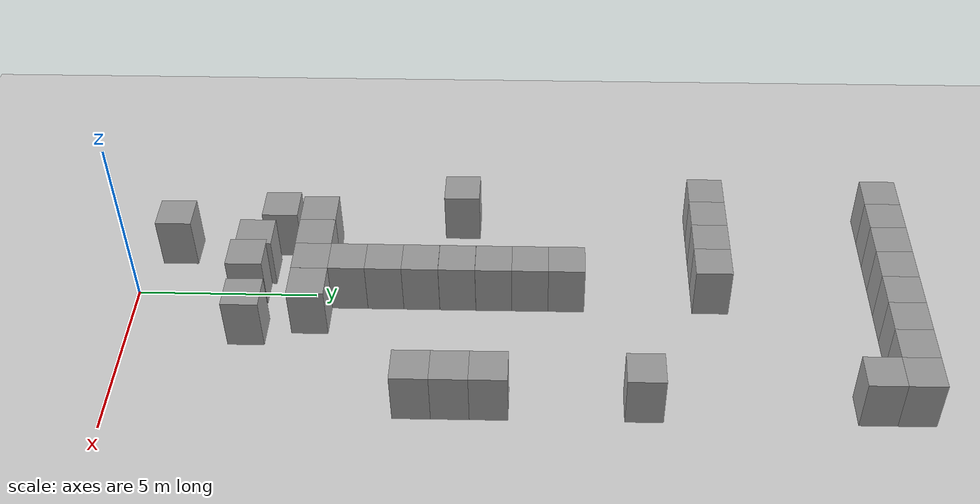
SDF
<sdf version="1.4">
 <world name="default">
  <model name="ground_plane">
   <static>1</static>
   <link name="link">
    <collision name="collision">
     <geometry><plane><normal>0 0 1</normal><size>100 100</size></plane></geometry>
     <surface><friction><ode><mu>100</mu><mu2>50</mu2></ode></friction></surface>
    </collision>
    <visual name="visual">
     <cast_shadows>0</cast_shadows>
     <geometry><plane><normal>0 0 1</normal><size>100 100</size></plane></geometry>
     <material>
      <script><uri>file://media/materials/scripts/gazebo.material</uri><name>Gazebo/Grey</name></script>
     </material>
    </visual>
    <velocity_decay><linear>0</linear><angular>0</angular></velocity_decay>
   </link>
  </model>
  <model name="unit_box_4">
   <pose>-2.01625 4.98914 0.5 0 0 -0.000278</pose>
   <static>1</static>
   <link name="link">
    <inertial>
     <mass>1</mass>
     <inertia><ixx>1</ixx><ixy>0</ixy><ixz>0</ixz><iyy>1</iyy><iyz>0</iyz><izz>1</izz></inertia>
    </inertial>
    <collision name="collision"><geometry><box><size>1 1 2</size></box></geometry></collision>
    <visual name="visual">
     <geometry><box><size>1 1 2</size></box></geometry>
     <material>
      <script><uri>file://media/materials/scripts/gazebo.material</uri><name>Gazebo/Grey</name></script>
     </material>
    </visual>
    <velocity_decay><linear>0</linear><angular>0</angular></velocity_decay>
   </link>
   <static>0</static>
  </model>
  <model name="unit_box_5">
   <pose>-1.01623 4.98884 0.5 0 0 -0.000319</pose>
   <static>1</static>
   <link name="link">
    <inertial>
     <mass>1</mass>
     <inertia><ixx>1</ixx><ixy>0</ixy><ixz>0</ixz><iyy>1</iyy><iyz>0</iyz><izz>1</izz></inertia>
    </inertial>
    <collision name="collision"><geometry><box><size>1 1 2</size></box></geometry></collision>
    <visual name="visual">
     <geometry><box><size>1 1 2</size></box></geometry>
     <material>
      <script><uri>file://media/materials/scripts/gazebo.material</uri><name>Gazebo/Grey</name></script>
     </material>
    </visual>
    <velocity_decay><linear>0</linear><angular>0</angular></velocity_decay>
   </link>
   <static>0</static>
  </model>
  <model name="unit_box_6">
   <pose>-0.01622 4.99333 0.5 0 0 -0.000328</pose>
   <static>1</static>
   <link name="link">
    <inertial>
     <mass>1</mass>
     <inertia><ixx>1</ixx><ixy>0</ixy><ixz>0</ixz><iyy>1</iyy><iyz>0</iyz><izz>1</izz></inertia>
    </inertial>
    <collision name="collision"><geometry><box><size>1 1 2</size></box></geometry></collision>
    <visual name="visual">
     <geometry><box><size>1 1 2</size></box></geometry>
     <material>
      <script><uri>file://media/materials/scripts/gazebo.material</uri><name>Gazebo/Grey</name></script>
     </material>
    </visual>
    <velocity_decay><linear>0</linear><angular>0</angular></velocity_decay>
   </link>
   <static>0</static>
  </model>
  <model name="unit_box_7">
   <pose>0.984482 4.99573 0.5 0 0 -0.000753</pose>
   <static>1</static>
   <link name="link">
    <inertial>
     <mass>1</mass>
     <inertia><ixx>1</ixx><ixy>0</ixy><ixz>0</ixz><iyy>1</iyy><iyz>0</iyz><izz>1</izz></inertia>
    </inertial>
    <collision name="collision"><geometry><box><size>1 1 2</size></box></geometry></collision>
    <visual name="visual">
     <geometry><box><size>1 1 2</size></box></geometry>
     <material>
      <script><uri>file://media/materials/scripts/gazebo.material</uri><name>Gazebo/Grey</name></script>
     </material>
    </visual>
    <velocity_decay><linear>0</linear><angular>0</angular></velocity_decay>
   </link>
   <static>0</static>
  </model>
  <model name="unit_box_9">
   <pose>1.44258 3.31648 0.5 0 0 -0.000565</pose>
   <static>1</static>
   <link name="link">
    <inertial>
     <mass>1</mass>
     <inertia><ixx>1</ixx><ixy>0</ixy><ixz>0</ixz><iyy>1</iyy><iyz>0</iyz><izz>1</izz></inertia>
    </inertial>
    <collision name="collision"><geometry><box><size>1 1 2</size></box></geometry></collision>
    <visual name="visual">
     <geometry><box><size>1 1 2</size></box></geometry>
     <material>
      <script><uri>file://media/materials/scripts/gazebo.material</uri><name>Gazebo/Grey</name></script>
     </material>
    </visual>
    <velocity_decay><linear>0</linear><angular>0</angular></velocity_decay>
   </link>
   <static>0</static>
  </model>
  <model name="unit_box_10">
   <pose>-0.138709 3.17291 0.5 0 0 -0.000527</pose>
   <static>1</static>
   <link name="link">
    <inertial>
     <mass>1</mass>
     <inertia><ixx>1</ixx><ixy>0</ixy><ixz>0</ixz><iyy>1</iyy><iyz>0</iyz><izz>1</izz></inertia>
    </inertial>
    <collision name="collision"><geometry><box><size>1 1 2</size></box></geometry></collision>
    <visual name="visual">
     <geometry><box><size>1 1 2</size></box></geometry>
     <material>
      <script><uri>file://media/materials/scripts/gazebo.material</uri><name>Gazebo/Grey</name></script>
     </material>
    </visual>
    <velocity_decay><linear>0</linear><angular>0</angular></velocity_decay>
   </link>
   <static>0</static>
  </model>
  <model name="unit_box_11">
   <pose>-0.970669 3.30786 0.5 0 0 -0.000466</pose>
   <static>1</static>
   <link name="link">
    <inertial>
     <mass>1</mass>
     <inertia><ixx>1</ixx><ixy>0</ixy><ixz>0</ixz><iyy>1</iyy><iyz>0</iyz><izz>1</izz></inertia>
    </inertial>
    <collision name="collision"><geometry><box><size>1 1 2</size></box></geometry></collision>
    <visual name="visual">
     <geometry><box><size>1 1 2</size></box></geometry>
     <material>
      <script><uri>file://media/materials/scripts/gazebo.material</uri><name>Gazebo/Grey</name></script>
     </material>
    </visual>
    <velocity_decay><linear>0</linear><angular>0</angular></velocity_decay>
   </link>
   <static>0</static>
  </model>
  <model name="unit_box_12">
   <pose>-2.17996 3.88081 0.5 0 0 -0.000581</pose>
   <static>1</static>
   <link name="link">
    <inertial>
     <mass>1</mass>
     <inertia><ixx>1</ixx><ixy>0</ixy><ixz>0</ixz><iyy>1</iyy><iyz>0</iyz><izz>1</izz></inertia>
    </inertial>
    <collision name="collision"><geometry><box><size>1 1 2</size></box></geometry></collision>
    <visual name="visual">
     <geometry><box><size>1 1 2</size></box></geometry>
     <material>
      <script><uri>file://media/materials/scripts/gazebo.material</uri><name>Gazebo/Grey</name></script>
     </material>
    </visual>
    <velocity_decay><linear>0</linear><angular>0</angular></velocity_decay>
   </link>
   <static>0</static>
  </model>
  <model name="unit_box_57">
   <pose>-0.014979 5.99334 0.5 0 0 -0.00033</pose>
   <static>1</static>
   <link name="link">
    <inertial>
     <mass>1</mass>
     <inertia><ixx>1</ixx><ixy>0</ixy><ixz>0</ixz><iyy>1</iyy><iyz>0</iyz><izz>1</izz></inertia>
    </inertial>
    <collision name="collision"><geometry><box><size>1 1 2</size></box></geometry></collision>
    <visual name="visual">
     <geometry><box><size>1 1 2</size></box></geometry>
     <material>
      <script><uri>file://media/materials/scripts/gazebo.material</uri><name>Gazebo/Grey</name></script>
     </material>
    </visual>
    <velocity_decay><linear>0</linear><angular>0</angular></velocity_decay>
   </link>
   <static>0</static>
  </model>
  <model name="unit_box_58">
   <pose>-0.010958 6.99335 0.5 0 0 -0.00031</pose>
   <static>1</static>
   <link name="link">
    <inertial>
     <mass>1</mass>
     <inertia><ixx>1</ixx><ixy>0</ixy><ixz>0</ixz><iyy>1</iyy><iyz>0</iyz><izz>1</izz></inertia>
    </inertial>
    <collision name="collision"><geometry><box><size>1 1 2</size></box></geometry></collision>
    <visual name="visual">
     <geometry><box><size>1 1 2</size></box></geometry>
     <material>
      <script><uri>file://media/materials/scripts/gazebo.material</uri><name>Gazebo/Grey</name></script>
     </material>
    </visual>
    <velocity_decay><linear>0</linear><angular>0</angular></velocity_decay>
   </link>
   <static>0</static>
  </model>
  <model name="unit_box_59">
   <pose>-0.007655 7.99337 0.5 0 0 -0.000262</pose>
   <static>1</static>
   <link name="link">
    <inertial>
     <mass>1</mass>
     <inertia><ixx>1</ixx><ixy>0</ixy><ixz>0</ixz><iyy>1</iyy><iyz>0</iyz><izz>1</izz></inertia>
    </inertial>
    <collision name="collision"><geometry><box><size>1 1 2</size></box></geometry></collision>
    <visual name="visual">
     <geometry><box><size>1 1 2</size></box></geometry>
     <material>
      <script><uri>file://media/materials/scripts/gazebo.material</uri><name>Gazebo/Grey</name></script>
     </material>
    </visual>
    <velocity_decay><linear>0</linear><angular>0</angular></velocity_decay>
   </link>
   <static>0</static>
  </model>
  <model name="unit_box_60">
   <pose>-0.004062 8.99709 0.5 0 0 -8.2e-05</pose>
   <static>1</static>
   <link name="link">
    <inertial>
     <mass>1</mass>
     <inertia><ixx>1</ixx><ixy>0</ixy><ixz>0</ixz><iyy>1</iyy><iyz>0</iyz><izz>1</izz></inertia>
    </inertial>
    <collision name="collision"><geometry><box><size>1 1 2</size></box></geometry></collision>
    <visual name="visual">
     <geometry><box><size>1 1 2</size></box></geometry>
     <material>
      <script><uri>file://media/materials/scripts/gazebo.material</uri><name>Gazebo/Grey</name></script>
     </material>
    </visual>
    <velocity_decay><linear>0</linear><angular>0</angular></velocity_decay>
   </link>
   <static>0</static>
  </model>
  <model name="unit_box_62">
   <pose>0 10 0.5 0 -0 0</pose>
   <static>1</static>
   <link name="link">
    <inertial>
     <mass>1</mass>
     <inertia><ixx>1</ixx><ixy>0</ixy><ixz>0</ixz><iyy>1</iyy><iyz>0</iyz><izz>1</izz></inertia>
    </inertial>
    <collision name="collision"><geometry><box><size>1 1 2</size></box></geometry></collision>
    <visual name="visual">
     <geometry><box><size>1 1 2</size></box></geometry>
     <material>
      <script><uri>file://media/materials/scripts/gazebo.material</uri><name>Gazebo/Grey</name></script>
     </material>
    </visual>
    <velocity_decay><linear>0</linear><angular>0</angular></velocity_decay>
   </link>
   <static>0</static>
  </model>
  <model name="unit_box_63">
   <pose>0 11 0.5 0 -0 0</pose>
   <static>1</static>
   <link name="link">
    <inertial>
     <mass>1</mass>
     <inertia><ixx>1</ixx><ixy>0</ixy><ixz>0</ixz><iyy>1</iyy><iyz>0</iyz><izz>1</izz></inertia>
    </inertial>
    <collision name="collision"><geometry><box><size>1 1 2</size></box></geometry></collision>
    <visual name="visual">
     <geometry><box><size>1 1 2</size></box></geometry>
     <material>
      <script><uri>file://media/materials/scripts/gazebo.material</uri><name>Gazebo/Grey</name></script>
     </material>
    </visual>
    <velocity_decay><linear>0</linear><angular>0</angular></velocity_decay>
   </link>
   <static>0</static>
  </model>
  <model name="unit_box_64">
   <pose>0 12 0.5 0 -0 0</pose>
   <static>1</static>
   <link name="link">
    <inertial>
     <mass>1</mass>
     <inertia><ixx>1</ixx><ixy>0</ixy><ixz>0</ixz><iyy>1</iyy><iyz>0</iyz><izz>1</izz></inertia>
    </inertial>
    <collision name="collision"><geometry><box><size>1 1 2</size></box></geometry></collision>
    <visual name="visual">
     <geometry><box><size>1 1 2</size></box></geometry>
     <material>
      <script><uri>file://media/materials/scripts/gazebo.material</uri><name>Gazebo/Grey</name></script>
     </material>
    </visual>
    <velocity_decay><linear>0</linear><angular>0</angular></velocity_decay>
   </link>
   <static>0</static>
  </model>
  <model name="unit_box_65">
   <pose>4 14 0.5 0 -0 0</pose>
   <static>1</static>
   <link name="link">
    <inertial>
     <mass>1</mass>
     <inertia><ixx>1</ixx><ixy>0</ixy><ixz>0</ixz><iyy>1</iyy><iyz>0</iyz><izz>1</izz></inertia>
    </inertial>
    <collision name="collision"><geometry><box><size>1 1 2</size></box></geometry></collision>
    <visual name="visual">
     <geometry><box><size>1 1 2</size></box></geometry>
     <material>
      <script><uri>file://media/materials/scripts/gazebo.material</uri><name>Gazebo/Grey</name></script>
     </material>
    </visual>
    <velocity_decay><linear>0</linear><angular>0</angular></velocity_decay>
   </link>
   <static>0</static>
  </model>
  <model name="unit_box_71">
   <pose>-2.99999 9 0.5 0 -0 2e-06</pose>
   <static>1</static>
   <link name="link">
    <inertial>
     <mass>1</mass>
     <inertia><ixx>1</ixx><ixy>0</ixy><ixz>0</ixz><iyy>1</iyy><iyz>0</iyz><izz>1</izz></inertia>
    </inertial>
    <collision name="collision"><geometry><box><size>1 1 2</size></box></geometry></collision>
    <visual name="visual">
     <geometry><box><size>1 1 2</size></box></geometry>
     <material>
      <script><uri>file://media/materials/scripts/gazebo.material</uri><name>Gazebo/Grey</name></script>
     </material>
    </visual>
    <velocity_decay><linear>0</linear><angular>0</angular></velocity_decay>
   </link>
   <static>0</static>
  </model>
  <model name="unit_box_82">
   <pose>-2.99999 16 0.5 0 -0 1.1e-05</pose>
   <static>1</static>
   <link name="link">
    <inertial>
     <mass>1</mass>
     <inertia><ixx>1</ixx><ixy>0</ixy><ixz>0</ixz><iyy>1</iyy><iyz>0</iyz><izz>1</izz></inertia>
    </inertial>
    <collision name="collision"><geometry><box><size>1 1 2</size></box></geometry></collision>
    <visual name="visual">
     <geometry><box><size>1 1 2</size></box></geometry>
     <material>
      <script><uri>file://media/materials/scripts/gazebo.material</uri><name>Gazebo/Grey</name></script>
     </material>
    </visual>
    <velocity_decay><linear>0</linear><angular>0</angular></velocity_decay>
   </link>
   <static>0</static>
  </model>
  <model name="unit_box_83">
   <pose>-1.99999 16 0.5 0 -0 1.1e-05</pose>
   <static>1</static>
   <link name="link">
    <inertial>
     <mass>1</mass>
     <inertia><ixx>1</ixx><ixy>0</ixy><ixz>0</ixz><iyy>1</iyy><iyz>0</iyz><izz>1</izz></inertia>
    </inertial>
    <collision name="collision"><geometry><box><size>1 1 2</size></box></geometry></collision>
    <visual name="visual">
     <geometry><box><size>1 1 2</size></box></geometry>
     <material>
      <script><uri>file://media/materials/scripts/gazebo.material</uri><name>Gazebo/Grey</name></script>
     </material>
    </visual>
    <velocity_decay><linear>0</linear><angular>0</angular></velocity_decay>
   </link>
   <static>0</static>
  </model>
  <model name="unit_box_84">
   <pose>-0.999991 16 0.5 0 -0 1.1e-05</pose>
   <static>1</static>
   <link name="link">
    <inertial>
     <mass>1</mass>
     <inertia><ixx>1</ixx><ixy>0</ixy><ixz>0</ixz><iyy>1</iyy><iyz>0</iyz><izz>1</izz></inertia>
    </inertial>
    <collision name="collision"><geometry><box><size>1 1 2</size></box></geometry></collision>
    <visual name="visual">
     <geometry><box><size>1 1 2</size></box></geometry>
     <material>
      <script><uri>file://media/materials/scripts/gazebo.material</uri><name>Gazebo/Grey</name></script>
     </material>
    </visual>
    <velocity_decay><linear>0</linear><angular>0</angular></velocity_decay>
   </link>
   <static>0</static>
  </model>
  <model name="unit_box_85">
   <pose>1.2e-05 16 0.5 0 -0 1e-05</pose>
   <static>1</static>
   <link name="link">
    <inertial>
     <mass>1</mass>
     <inertia><ixx>1</ixx><ixy>0</ixy><ixz>0</ixz><iyy>1</iyy><iyz>0</iyz><izz>1</izz></inertia>
    </inertial>
    <collision name="collision"><geometry><box><size>1 1 2</size></box></geometry></collision>
    <visual name="visual">
     <geometry><box><size>1 1 2</size></box></geometry>
     <material>
      <script><uri>file://media/materials/scripts/gazebo.material</uri><name>Gazebo/Grey</name></script>
     </material>
    </visual>
    <velocity_decay><linear>0</linear><angular>0</angular></velocity_decay>
   </link>
   <static>0</static>
  </model>
  <model name="unit_box_90">
   <pose>3.99999 8 0.5 0 -0 0</pose>
   <static>1</static>
   <link name="link">
    <inertial>
     <mass>1</mass>
     <inertia><ixx>1</ixx><ixy>0</ixy><ixz>0</ixz><iyy>1</iyy><iyz>0</iyz><izz>1</izz></inertia>
    </inertial>
    <collision name="collision"><geometry><box><size>1 1 2</size></box></geometry></collision>
    <visual name="visual">
     <geometry><box><size>1 1 2</size></box></geometry>
     <material>
      <script><uri>file://media/materials/scripts/gazebo.material</uri><name>Gazebo/Grey</name></script>
     </material>
    </visual>
    <velocity_decay><linear>0</linear><angular>0</angular></velocity_decay>
   </link>
   <static>0</static>
  </model>
  <model name="unit_box_91">
   <pose>3.99999 9 0.5 0 -0 1e-06</pose>
   <static>1</static>
   <link name="link">
    <inertial>
     <mass>1</mass>
     <inertia><ixx>1</ixx><ixy>0</ixy><ixz>0</ixz><iyy>1</iyy><iyz>0</iyz><izz>1</izz></inertia>
    </inertial>
    <collision name="collision"><geometry><box><size>1 1 2</size></box></geometry></collision>
    <visual name="visual">
     <geometry><box><size>1 1 2</size></box></geometry>
     <material>
      <script><uri>file://media/materials/scripts/gazebo.material</uri><name>Gazebo/Grey</name></script>
     </material>
    </visual>
    <velocity_decay><linear>0</linear><angular>0</angular></velocity_decay>
   </link>
   <static>0</static>
  </model>
  <model name="unit_box_92">
   <pose>4 10 0.5 0 -0 1e-06</pose>
   <static>1</static>
   <link name="link">
    <inertial>
     <mass>1</mass>
     <inertia><ixx>1</ixx><ixy>0</ixy><ixz>0</ixz><iyy>1</iyy><iyz>0</iyz><izz>1</izz></inertia>
    </inertial>
    <collision name="collision"><geometry><box><size>1 1 2</size></box></geometry></collision>
    <visual name="visual">
     <geometry><box><size>1 1 2</size></box></geometry>
     <material>
      <script><uri>file://media/materials/scripts/gazebo.material</uri><name>Gazebo/Grey</name></script>
     </material>
    </visual>
    <velocity_decay><linear>0</linear><angular>0</angular></velocity_decay>
   </link>
   <static>0</static>
  </model>
  <model name="unit_box_100">
   <pose>-3.00001 21 0.5 0 0 -1e-06</pose>
   <static>1</static>
   <link name="link">
    <inertial>
     <mass>1</mass>
     <inertia><ixx>1</ixx><ixy>0</ixy><ixz>0</ixz><iyy>1</iyy><iyz>0</iyz><izz>1</izz></inertia>
    </inertial>
    <collision name="collision"><geometry><box><size>1 1 2</size></box></geometry></collision>
    <visual name="visual">
     <geometry><box><size>1 1 2</size></box></geometry>
     <material>
      <script><uri>file://media/materials/scripts/gazebo.material</uri><name>Gazebo/Grey</name></script>
     </material>
    </visual>
    <velocity_decay><linear>0</linear><angular>0</angular></velocity_decay>
   </link>
   <static>0</static>
  </model>
  <model name="unit_box_101">
   <pose>-2.00001 21 0.5 0 0 -1e-06</pose>
   <static>1</static>
   <link name="link">
    <inertial>
     <mass>1</mass>
     <inertia><ixx>1</ixx><ixy>0</ixy><ixz>0</ixz><iyy>1</iyy><iyz>0</iyz><izz>1</izz></inertia>
    </inertial>
    <collision name="collision"><geometry><box><size>1 1 2</size></box></geometry></collision>
    <visual name="visual">
     <geometry><box><size>1 1 2</size></box></geometry>
     <material>
      <script><uri>file://media/materials/scripts/gazebo.material</uri><name>Gazebo/Grey</name></script>
     </material>
    </visual>
    <velocity_decay><linear>0</linear><angular>0</angular></velocity_decay>
   </link>
   <static>0</static>
  </model>
  <model name="unit_box_102">
   <pose>-1.00001 21 0.5 0 -0 0</pose>
   <static>1</static>
   <link name="link">
    <inertial>
     <mass>1</mass>
     <inertia><ixx>1</ixx><ixy>0</ixy><ixz>0</ixz><iyy>1</iyy><iyz>0</iyz><izz>1</izz></inertia>
    </inertial>
    <collision name="collision"><geometry><box><size>1 1 2</size></box></geometry></collision>
    <visual name="visual">
     <geometry><box><size>1 1 2</size></box></geometry>
     <material>
      <script><uri>file://media/materials/scripts/gazebo.material</uri><name>Gazebo/Grey</name></script>
     </material>
    </visual>
    <velocity_decay><linear>0</linear><angular>0</angular></velocity_decay>
   </link>
   <static>0</static>
  </model>
  <model name="unit_box_103">
   <pose>-1e-05 21 0.5 0 -0 0</pose>
   <static>1</static>
   <link name="link">
    <inertial>
     <mass>1</mass>
     <inertia><ixx>1</ixx><ixy>0</ixy><ixz>0</ixz><iyy>1</iyy><iyz>0</iyz><izz>1</izz></inertia>
    </inertial>
    <collision name="collision"><geometry><box><size>1 1 2</size></box></geometry></collision>
    <visual name="visual">
     <geometry><box><size>1 1 2</size></box></geometry>
     <material>
      <script><uri>file://media/materials/scripts/gazebo.material</uri><name>Gazebo/Grey</name></script>
     </material>
    </visual>
    <velocity_decay><linear>0</linear><angular>0</angular></velocity_decay>
   </link>
   <static>0</static>
  </model>
  <model name="unit_box_104">
   <pose>0.999991 21 0.5 0 -0 0</pose>
   <static>1</static>
   <link name="link">
    <inertial>
     <mass>1</mass>
     <inertia><ixx>1</ixx><ixy>0</ixy><ixz>0</ixz><iyy>1</iyy><iyz>0</iyz><izz>1</izz></inertia>
    </inertial>
    <collision name="collision"><geometry><box><size>1 1 2</size></box></geometry></collision>
    <visual name="visual">
     <geometry><box><size>1 1 2</size></box></geometry>
     <material>
      <script><uri>file://media/materials/scripts/gazebo.material</uri><name>Gazebo/Grey</name></script>
     </material>
    </visual>
    <velocity_decay><linear>0</linear><angular>0</angular></velocity_decay>
   </link>
   <static>0</static>
  </model>
  <model name="unit_box_105">
   <pose>1.99999 21 0.5 0 -0 0</pose>
   <static>1</static>
   <link name="link">
    <inertial>
     <mass>1</mass>
     <inertia><ixx>1</ixx><ixy>0</ixy><ixz>0</ixz><iyy>1</iyy><iyz>0</iyz><izz>1</izz></inertia>
    </inertial>
    <collision name="collision"><geometry><box><size>1 1 2</size></box></geometry></collision>
    <visual name="visual">
     <geometry><box><size>1 1 2</size></box></geometry>
     <material>
      <script><uri>file://media/materials/scripts/gazebo.material</uri><name>Gazebo/Grey</name></script>
     </material>
    </visual>
    <velocity_decay><linear>0</linear><angular>0</angular></velocity_decay>
   </link>
   <static>0</static>
  </model>
  <model name="unit_box_106">
   <pose>2.99999 21 0.5 0 -0 1e-06</pose>
   <static>1</static>
   <link name="link">
    <inertial>
     <mass>1</mass>
     <inertia><ixx>1</ixx><ixy>0</ixy><ixz>0</ixz><iyy>1</iyy><iyz>0</iyz><izz>1</izz></inertia>
    </inertial>
    <collision name="collision"><geometry><box><size>1 1 2</size></box></geometry></collision>
    <visual name="visual">
     <geometry><box><size>1 1 2</size></box></geometry>
     <material>
      <script><uri>file://media/materials/scripts/gazebo.material</uri><name>Gazebo/Grey</name></script>
     </material>
    </visual>
    <velocity_decay><linear>0</linear><angular>0</angular></velocity_decay>
   </link>
   <static>0</static>
  </model>
  <model name="unit_box_107">
   <pose>3.99999 21 0.5 0 -0 2e-06</pose>
   <static>1</static>
   <link name="link">
    <inertial>
     <mass>1</mass>
     <inertia><ixx>1</ixx><ixy>0</ixy><ixz>0</ixz><iyy>1</iyy><iyz>0</iyz><izz>1</izz></inertia>
    </inertial>
    <collision name="collision"><geometry><box><size>1 1 2</size></box></geometry></collision>
    <visual name="visual">
     <geometry><box><size>1 1 2</size></box></geometry>
     <material>
      <script><uri>file://media/materials/scripts/gazebo.material</uri><name>Gazebo/Grey</name></script>
     </material>
    </visual>
    <velocity_decay><linear>0</linear><angular>0</angular></velocity_decay>
   </link>
   <static>0</static>
  </model>
  <model name="unit_box_126">
   <pose>4 20 0.5 0 -0 3e-06</pose>
   <static>1</static>
   <link name="link">
    <inertial>
     <mass>1</mass>
     <inertia><ixx>1</ixx><ixy>0</ixy><ixz>0</ixz><iyy>1</iyy><iyz>0</iyz><izz>1</izz></inertia>
    </inertial>
    <collision name="collision"><geometry><box><size>1 1 2</size></box></geometry></collision>
    <visual name="visual">
     <geometry><box><size>1 1 2</size></box></geometry>
     <material>
      <script><uri>file://media/materials/scripts/gazebo.material</uri><name>Gazebo/Grey</name></script>
     </material>
    </visual>
    <velocity_decay><linear>0</linear><angular>0</angular></velocity_decay>
   </link>
   <static>0</static>
  </model>
  <model name="unit_box_226">
   <pose>-1.75519 0.927405 0.5 0 0 -3e-06</pose>
   <static>1</static>
   <link name="link">
    <inertial>
     <mass>1</mass>
     <inertia><ixx>1</ixx><ixy>0</ixy><ixz>0</ixz><iyy>1</iyy><iyz>0</iyz><izz>1</izz></inertia>
    </inertial>
    <collision name="collision"><geometry><box><size>1 1 2</size></box></geometry></collision>
    <visual name="visual">
     <geometry><box><size>1 1 2</size></box></geometry>
     <material>
      <script><uri>file://media/materials/scripts/gazebo.material</uri><name>Gazebo/Grey</name></script>
     </material>
    </visual>
    <velocity_decay><linear>0</linear><angular>0</angular></velocity_decay>
   </link>
   <static>0</static>
  </model>
 </world>
</sdf>
